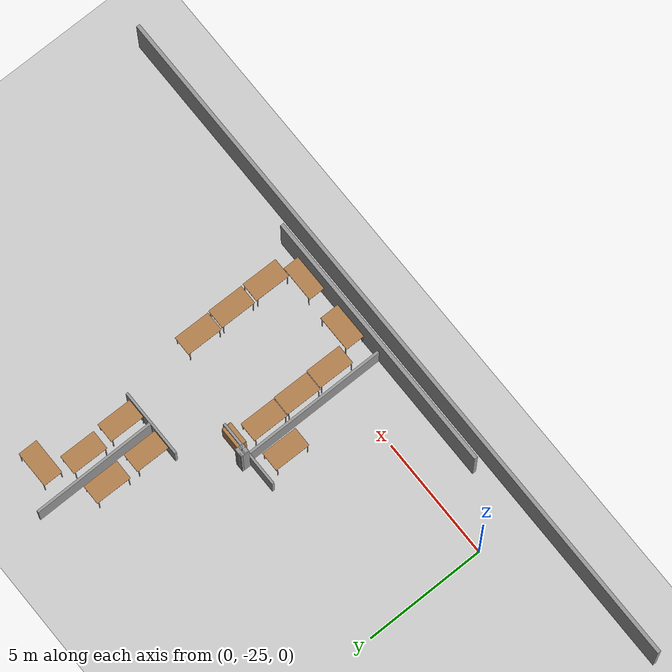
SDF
<sdf version="1.7">
 <world name="default">
  <model name="ground_plane">
   <static>1</static>
   <link name="link">
    <collision name="collision">
     <geometry><plane><normal>0 0 1</normal><size>100 100</size></plane></geometry>
     <surface>
      <contact><collide_bitmask>65535</collide_bitmask></contact>
      <friction><ode><mu>100</mu><mu2>50</mu2></ode></friction>
     </surface>
    </collision>
    <visual name="visual">
     <cast_shadows>0</cast_shadows>
     <geometry><plane><normal>0 0 1</normal><size>100 100</size></plane></geometry>
     <material>
      <script><uri>file://media/materials/scripts/gazebo.material</uri><name>Gazebo/Grey</name></script>
     </material>
    </visual>
   </link>
  </model>
  <model name="XXXXX_office_centered">
   <pose>8.46852 -9.33941 0 0 -0 0</pose>
   <link name="Wall_15">
    <collision name="Wall_15_Collision">
     <geometry><box><size>11 0.15 2.5</size></box></geometry>
     <pose>0 0 1.25 0 -0 0</pose>
    </collision>
    <visual name="Wall_15_Visual">
     <pose>0 0 1.25 0 -0 0</pose>
     <geometry><box><size>11 0.15 2.5</size></box></geometry>
     <material>
      <script><uri>file://media/materials/scripts/gazebo.material</uri><name>Gazebo/Grey</name></script>
      <ambient>1 1 1 1</ambient>
     </material>
     <meta><layer>0</layer></meta>
    </visual>
    <pose>-0.6 -17.3501 0 0 -0 3.14159</pose>
   </link>
   <link name="Wall_150">
    <collision name="Wall_150_Collision">
     <geometry><box><size>5.2 0.1 1.3</size></box></geometry>
     <pose>0 0 0.65 0 -0 0</pose>
    </collision>
    <visual name="Wall_150_Visual">
     <pose>0 0 0.65 0 -0 0</pose>
     <geometry><box><size>5.2 0.1 1.3</size></box></geometry>
     <material>
      <script><uri>file://media/materials/scripts/gazebo.material</uri><name>Gazebo/Grey</name></script>
      <ambient>1 1 1 1</ambient>
     </material>
     <meta><layer>0</layer></meta>
    </visual>
    <pose>2.35877 -6.75985 0 0 -0 -1.56746</pose>
   </link>
   <link name="Wall_151">
    <collision name="Wall_151_Collision">
     <geometry><box><size>1.45032 0.1 1.3</size></box></geometry>
     <pose>0 0 0.65 0 -0 0</pose>
    </collision>
    <visual name="Wall_151_Visual">
     <pose>0 0 0.65 0 -0 0</pose>
     <geometry><box><size>1.45032 0.1 1.3</size></box></geometry>
     <material>
      <script><uri>file://media/materials/scripts/gazebo.material</uri><name>Gazebo/Grey</name></script>
      <ambient>1 1 1 1</ambient>
     </material>
     <meta><layer>0</layer></meta>
    </visual>
    <pose>3.04227 -9.30985 0 0 -0 0</pose>
   </link>
   <link name="Wall_155">
    <collision name="Wall_155_Collision">
     <geometry><box><size>1.467 0.1 1.3</size></box></geometry>
     <pose>0 0 0.65 0 -0 0</pose>
    </collision>
    <visual name="Wall_155_Visual">
     <pose>0 0 0.65 0 -0 0</pose>
     <geometry><box><size>1.467 0.1 1.3</size></box></geometry>
     <material>
      <script><uri>file://media/materials/scripts/gazebo.material</uri><name>Gazebo/Grey</name></script>
      <ambient>1 1 1 1</ambient>
     </material>
     <meta><layer>0</layer></meta>
    </visual>
    <pose>1.68377 -9.30985 0 0 -0 3.14159</pose>
   </link>
   <link name="Wall_178">
    <collision name="Wall_178_Collision">
     <geometry><box><size>6.11833 0.1 1.3</size></box></geometry>
     <pose>0 0 0.65 0 -0 0</pose>
    </collision>
    <visual name="Wall_178_Visual">
     <pose>0 0 0.65 0 -0 0</pose>
     <geometry><box><size>6.11833 0.1 1.3</size></box></geometry>
     <material>
      <script><uri>file://media/materials/scripts/gazebo.material</uri><name>Gazebo/Grey</name></script>
      <ambient>1 1 1 1</ambient>
     </material>
     <meta><layer>0</layer></meta>
    </visual>
    <pose>-0.698728 -14.3349 0 0 -0 1.5708</pose>
   </link>
   <link name="Wall_179">
    <collision name="Wall_179_Collision">
     <geometry><box><size>1.44999 0.1 1.3</size></box></geometry>
     <pose>0 0 0.65 0 -0 0</pose>
    </collision>
    <visual name="Wall_179_Visual">
     <pose>0 0 0.65 0 -0 0</pose>
     <geometry><box><size>1.44999 0.1 1.3</size></box></geometry>
     <material>
      <script><uri>file://media/materials/scripts/gazebo.material</uri><name>Gazebo/Grey</name></script>
      <ambient>1 1 1 1</ambient>
     </material>
     <meta><layer>0</layer></meta>
    </visual>
    <pose>-0.023727 -11.3259 0 0 -0 0</pose>
   </link>
   <link name="Wall_181">
    <collision name="Wall_181_Collision">
     <geometry><box><size>1.45001 0.1 1.3</size></box></geometry>
     <pose>0 0 0.65 0 -0 0</pose>
    </collision>
    <visual name="Wall_181_Visual">
     <pose>0 0 0.65 0 -0 0</pose>
     <geometry><box><size>1.45001 0.1 1.3</size></box></geometry>
     <material>
      <script><uri>file://media/materials/scripts/gazebo.material</uri><name>Gazebo/Grey</name></script>
      <ambient>1 1 1 1</ambient>
     </material>
     <meta><layer>0</layer></meta>
    </visual>
    <pose>-1.37373 -11.3259 0 0 -0 3.14159</pose>
   </link>
   <link name="Wall_22">
    <collision name="Wall_22_Collision">
     <geometry><box><size>29.5 0.15 2.5</size></box></geometry>
     <pose>0 0 1.25 0 -0 0</pose>
    </collision>
    <visual name="Wall_22_Visual">
     <pose>0 0 1.25 0 -0 0</pose>
     <geometry><box><size>29.5 0.15 2.5</size></box></geometry>
     <material>
      <script><uri>file://media/materials/scripts/gazebo.material</uri><name>Gazebo/Grey</name></script>
      <ambient>1 1 1 1</ambient>
     </material>
     <meta><layer>0</layer></meta>
    </visual>
    <pose>-0.75 -17.9501 0 0 -0 3.14159</pose>
   </link>
   <link name="Wall_82">
    <collision name="Wall_82_Collision">
     <geometry><box><size>0.355014 0.15 2.5</size></box></geometry>
     <pose>0 0 1.25 0 -0 0</pose>
    </collision>
    <visual name="Wall_82_Visual">
     <pose>0 0 1.25 0 -0 0</pose>
     <geometry><box><size>0.355014 0.15 2.5</size></box></geometry>
     <material>
      <script><uri>file://media/materials/scripts/gazebo.material</uri><name>Gazebo/Grey</name></script>
      <ambient>1 1 1 1</ambient>
     </material>
     <meta><layer>0</layer></meta>
    </visual>
    <pose>-0.782969 -11.0784 0 0 -0 1.55467</pose>
   </link>
   <link name="Wall_83">
    <collision name="Wall_83_Collision">
     <geometry><box><size>0.35832 0.15 2.5</size></box></geometry>
     <pose>0 0 1.25 0 -0 0</pose>
    </collision>
    <visual name="Wall_83_Visual">
     <pose>0 0 1.25 0 -0 0</pose>
     <geometry><box><size>0.35832 0.15 2.5</size></box></geometry>
     <material>
      <script><uri>file://media/materials/scripts/gazebo.material</uri><name>Gazebo/Grey</name></script>
      <ambient>1 1 1 1</ambient>
     </material>
     <meta><layer>0</layer></meta>
    </visual>
    <pose>-0.677169 -10.9743 0 0 -0 0.015872</pose>
   </link>
   <link name="Wall_84">
    <collision name="Wall_84_Collision">
     <geometry><box><size>0.354987 0.15 2.5</size></box></geometry>
     <pose>0 0 1.25 0 -0 0</pose>
    </collision>
    <visual name="Wall_84_Visual">
     <pose>0 0 1.25 0 -0 0</pose>
     <geometry><box><size>0.354987 0.15 2.5</size></box></geometry>
     <material>
      <script><uri>file://media/materials/scripts/gazebo.material</uri><name>Gazebo/Grey</name></script>
      <ambient>1 1 1 1</ambient>
     </material>
     <meta><layer>0</layer></meta>
    </visual>
    <pose>-0.573022 -11.0751 0 0 -0 -1.5708</pose>
   </link>
   <link name="Wall_85">
    <collision name="Wall_85_Collision">
     <geometry><box><size>0.32866 0.15 2.5</size></box></geometry>
     <pose>0 0 1.25 0 -0 0</pose>
    </collision>
    <visual name="Wall_85_Visual">
     <pose>0 0 1.25 0 -0 0</pose>
     <geometry><box><size>0.32866 0.15 2.5</size></box></geometry>
     <material>
      <script><uri>file://media/materials/scripts/gazebo.material</uri><name>Gazebo/Grey</name></script>
      <ambient>1 1 1 1</ambient>
     </material>
     <meta><layer>0</layer></meta>
    </visual>
    <pose>-0.662291 -11.1743 0 0 -0 3.10457</pose>
   </link>
   <static>1</static>
  </model>
  <model name="table_8">
   <static>1</static>
   <link name="link">
    <collision name="surface">
     <pose>0 0 1 0 -0 0</pose>
     <geometry><box><size>1.5 0.8 0.03</size></box></geometry>
     <surface><friction><ode><mu>0.6</mu><mu2>0.6</mu2></ode></friction></surface>
    </collision>
    <visual name="visual1">
     <pose>0 0 1 0 -0 0</pose>
     <geometry><box><size>1.5 0.8 0.03</size></box></geometry>
     <material>
      <script><uri>file://media/materials/scripts/gazebo.material</uri><name>Gazebo/Wood</name></script>
     </material>
    </visual>
    <collision name="collision_front_left_leg">
     <pose>0.68 0.38 0.5 0 -0 0</pose>
     <geometry><cylinder><radius>0.02</radius><length>1</length></cylinder></geometry>
    </collision>
    <visual name="visual_front_left_leg">
     <pose>0.68 0.38 0.5 0 -0 0</pose>
     <geometry><cylinder><radius>0.02</radius><length>1</length></cylinder></geometry>
     <material>
      <script><uri>file://media/materials/scripts/gazebo.material</uri><name>Gazebo/Grey</name></script>
     </material>
    </visual>
    <collision name="collision_front_right_leg">
     <pose>0.68 -0.38 0.5 0 -0 0</pose>
     <geometry><cylinder><radius>0.02</radius><length>1</length></cylinder></geometry>
    </collision>
    <visual name="visual_front_right_leg">
     <pose>0.68 -0.38 0.5 0 -0 0</pose>
     <geometry><cylinder><radius>0.02</radius><length>1</length></cylinder></geometry>
     <material>
      <script><uri>file://media/materials/scripts/gazebo.material</uri><name>Gazebo/Grey</name></script>
     </material>
    </visual>
    <collision name="collision_back_right_leg">
     <pose>-0.68 -0.38 0.5 0 -0 0</pose>
     <geometry><cylinder><radius>0.02</radius><length>1</length></cylinder></geometry>
    </collision>
    <visual name="visual_back_right_leg">
     <pose>-0.68 -0.38 0.5 0 -0 0</pose>
     <geometry><cylinder><radius>0.02</radius><length>1</length></cylinder></geometry>
     <material>
      <script><uri>file://media/materials/scripts/gazebo.material</uri><name>Gazebo/Grey</name></script>
     </material>
    </visual>
    <collision name="collision_back_left_leg">
     <pose>-0.68 0.38 0.5 0 -0 0</pose>
     <geometry><cylinder><radius>0.02</radius><length>1</length></cylinder></geometry>
    </collision>
    <visual name="visual_back_left_leg">
     <pose>-0.68 0.38 0.5 0 -0 0</pose>
     <geometry><cylinder><radius>0.02</radius><length>1</length></cylinder></geometry>
     <material>
      <script><uri>file://media/materials/scripts/gazebo.material</uri><name>Gazebo/Grey</name></script>
     </material>
    </visual>
   </link>
   <pose>12.2109 -14.6879 0 0 -0 0</pose>
  </model>
  <model name="table_14">
   <static>1</static>
   <link name="link">
    <collision name="surface">
     <pose>0 0 1 0 -0 0</pose>
     <geometry><box><size>1.5 0.8 0.03</size></box></geometry>
     <surface><friction><ode><mu>0.6</mu><mu2>0.6</mu2></ode></friction></surface>
    </collision>
    <visual name="visual1">
     <pose>0 0 1 0 -0 0</pose>
     <geometry><box><size>1.5 0.8 0.03</size></box></geometry>
     <material>
      <script><uri>file://media/materials/scripts/gazebo.material</uri><name>Gazebo/Wood</name></script>
     </material>
    </visual>
    <collision name="collision_front_left_leg">
     <pose>0.68 0.38 0.5 0 -0 0</pose>
     <geometry><cylinder><radius>0.02</radius><length>1</length></cylinder></geometry>
    </collision>
    <visual name="visual_front_left_leg">
     <pose>0.68 0.38 0.5 0 -0 0</pose>
     <geometry><cylinder><radius>0.02</radius><length>1</length></cylinder></geometry>
     <material>
      <script><uri>file://media/materials/scripts/gazebo.material</uri><name>Gazebo/Grey</name></script>
     </material>
    </visual>
    <collision name="collision_front_right_leg">
     <pose>0.68 -0.38 0.5 0 -0 0</pose>
     <geometry><cylinder><radius>0.02</radius><length>1</length></cylinder></geometry>
    </collision>
    <visual name="visual_front_right_leg">
     <pose>0.68 -0.38 0.5 0 -0 0</pose>
     <geometry><cylinder><radius>0.02</radius><length>1</length></cylinder></geometry>
     <material>
      <script><uri>file://media/materials/scripts/gazebo.material</uri><name>Gazebo/Grey</name></script>
     </material>
    </visual>
    <collision name="collision_back_right_leg">
     <pose>-0.68 -0.38 0.5 0 -0 0</pose>
     <geometry><cylinder><radius>0.02</radius><length>1</length></cylinder></geometry>
    </collision>
    <visual name="visual_back_right_leg">
     <pose>-0.68 -0.38 0.5 0 -0 0</pose>
     <geometry><cylinder><radius>0.02</radius><length>1</length></cylinder></geometry>
     <material>
      <script><uri>file://media/materials/scripts/gazebo.material</uri><name>Gazebo/Grey</name></script>
     </material>
    </visual>
    <collision name="collision_back_left_leg">
     <pose>-0.68 0.38 0.5 0 -0 0</pose>
     <geometry><cylinder><radius>0.02</radius><length>1</length></cylinder></geometry>
    </collision>
    <visual name="visual_back_left_leg">
     <pose>-0.68 0.38 0.5 0 -0 0</pose>
     <geometry><cylinder><radius>0.02</radius><length>1</length></cylinder></geometry>
     <material>
      <script><uri>file://media/materials/scripts/gazebo.material</uri><name>Gazebo/Grey</name></script>
     </material>
    </visual>
   </link>
   <pose>9.3402 -26.2238 0 0 -0 0</pose>
  </model>
  <model name="table_15">
   <static>1</static>
   <link name="link">
    <collision name="surface">
     <pose>0 0 1 0 -0 0</pose>
     <geometry><box><size>1.5 0.8 0.03</size></box></geometry>
     <surface><friction><ode><mu>0.6</mu><mu2>0.6</mu2></ode></friction></surface>
    </collision>
    <visual name="visual1">
     <pose>0 0 1 0 -0 0</pose>
     <geometry><box><size>1.5 0.8 0.03</size></box></geometry>
     <material>
      <script><uri>file://media/materials/scripts/gazebo.material</uri><name>Gazebo/Wood</name></script>
     </material>
    </visual>
    <collision name="collision_front_left_leg">
     <pose>0.68 0.38 0.5 0 -0 0</pose>
     <geometry><cylinder><radius>0.02</radius><length>1</length></cylinder></geometry>
    </collision>
    <visual name="visual_front_left_leg">
     <pose>0.68 0.38 0.5 0 -0 0</pose>
     <geometry><cylinder><radius>0.02</radius><length>1</length></cylinder></geometry>
     <material>
      <script><uri>file://media/materials/scripts/gazebo.material</uri><name>Gazebo/Grey</name></script>
     </material>
    </visual>
    <collision name="collision_front_right_leg">
     <pose>0.68 -0.38 0.5 0 -0 0</pose>
     <geometry><cylinder><radius>0.02</radius><length>1</length></cylinder></geometry>
    </collision>
    <visual name="visual_front_right_leg">
     <pose>0.68 -0.38 0.5 0 -0 0</pose>
     <geometry><cylinder><radius>0.02</radius><length>1</length></cylinder></geometry>
     <material>
      <script><uri>file://media/materials/scripts/gazebo.material</uri><name>Gazebo/Grey</name></script>
     </material>
    </visual>
    <collision name="collision_back_right_leg">
     <pose>-0.68 -0.38 0.5 0 -0 0</pose>
     <geometry><cylinder><radius>0.02</radius><length>1</length></cylinder></geometry>
    </collision>
    <visual name="visual_back_right_leg">
     <pose>-0.68 -0.38 0.5 0 -0 0</pose>
     <geometry><cylinder><radius>0.02</radius><length>1</length></cylinder></geometry>
     <material>
      <script><uri>file://media/materials/scripts/gazebo.material</uri><name>Gazebo/Grey</name></script>
     </material>
    </visual>
    <collision name="collision_back_left_leg">
     <pose>-0.68 0.38 0.5 0 -0 0</pose>
     <geometry><cylinder><radius>0.02</radius><length>1</length></cylinder></geometry>
    </collision>
    <visual name="visual_back_left_leg">
     <pose>-0.68 0.38 0.5 0 -0 0</pose>
     <geometry><cylinder><radius>0.02</radius><length>1</length></cylinder></geometry>
     <material>
      <script><uri>file://media/materials/scripts/gazebo.material</uri><name>Gazebo/Grey</name></script>
     </material>
    </visual>
   </link>
   <pose>11.6172 -26.3433 0 0 -0 0</pose>
  </model>
  <model name="table_26_clone_12">
   <static>1</static>
   <link name="link">
    <collision name="surface">
     <pose>0 0 1 0 -0 0</pose>
     <geometry><box><size>1.5 0.8 0.03</size></box></geometry>
     <surface><friction><ode><mu>0.6</mu><mu2>0.6</mu2></ode></friction></surface>
    </collision>
    <visual name="visual1">
     <pose>0 0 1 0 -0 0</pose>
     <geometry><box><size>1.5 0.8 0.03</size></box></geometry>
     <material>
      <script><uri>file://media/materials/scripts/gazebo.material</uri><name>Gazebo/Wood</name></script>
     </material>
    </visual>
    <collision name="collision_front_left_leg">
     <pose>0.68 0.38 0.5 0 -0 0</pose>
     <geometry><cylinder><radius>0.02</radius><length>1</length></cylinder></geometry>
    </collision>
    <visual name="visual_front_left_leg">
     <pose>0.68 0.38 0.5 0 -0 0</pose>
     <geometry><cylinder><radius>0.02</radius><length>1</length></cylinder></geometry>
     <material>
      <script><uri>file://media/materials/scripts/gazebo.material</uri><name>Gazebo/Grey</name></script>
     </material>
    </visual>
    <collision name="collision_front_right_leg">
     <pose>0.68 -0.38 0.5 0 -0 0</pose>
     <geometry><cylinder><radius>0.02</radius><length>1</length></cylinder></geometry>
    </collision>
    <visual name="visual_front_right_leg">
     <pose>0.68 -0.38 0.5 0 -0 0</pose>
     <geometry><cylinder><radius>0.02</radius><length>1</length></cylinder></geometry>
     <material>
      <script><uri>file://media/materials/scripts/gazebo.material</uri><name>Gazebo/Grey</name></script>
     </material>
    </visual>
    <collision name="collision_back_right_leg">
     <pose>-0.68 -0.38 0.5 0 -0 0</pose>
     <geometry><cylinder><radius>0.02</radius><length>1</length></cylinder></geometry>
    </collision>
    <visual name="visual_back_right_leg">
     <pose>-0.68 -0.38 0.5 0 -0 0</pose>
     <geometry><cylinder><radius>0.02</radius><length>1</length></cylinder></geometry>
     <material>
      <script><uri>file://media/materials/scripts/gazebo.material</uri><name>Gazebo/Grey</name></script>
     </material>
    </visual>
    <collision name="collision_back_left_leg">
     <pose>-0.68 0.38 0.5 0 -0 0</pose>
     <geometry><cylinder><radius>0.02</radius><length>1</length></cylinder></geometry>
    </collision>
    <visual name="visual_back_left_leg">
     <pose>-0.68 0.38 0.5 0 -0 0</pose>
     <geometry><cylinder><radius>0.02</radius><length>1</length></cylinder></geometry>
     <material>
      <script><uri>file://media/materials/scripts/gazebo.material</uri><name>Gazebo/Grey</name></script>
     </material>
    </visual>
   </link>
   <pose>11.6314 -17.8937 0 0 0 -1.57974</pose>
  </model>
  <model name="table_26_clone_13">
   <static>1</static>
   <link name="link">
    <collision name="surface">
     <pose>0 0 1 0 -0 0</pose>
     <geometry><box><size>1.5 0.8 0.03</size></box></geometry>
     <surface><friction><ode><mu>0.6</mu><mu2>0.6</mu2></ode></friction></surface>
    </collision>
    <visual name="visual1">
     <pose>0 0 1 0 -0 0</pose>
     <geometry><box><size>1.5 0.8 0.03</size></box></geometry>
     <material>
      <script><uri>file://media/materials/scripts/gazebo.material</uri><name>Gazebo/Wood</name></script>
     </material>
    </visual>
    <collision name="collision_front_left_leg">
     <pose>0.68 0.38 0.5 0 -0 0</pose>
     <geometry><cylinder><radius>0.02</radius><length>1</length></cylinder></geometry>
    </collision>
    <visual name="visual_front_left_leg">
     <pose>0.68 0.38 0.5 0 -0 0</pose>
     <geometry><cylinder><radius>0.02</radius><length>1</length></cylinder></geometry>
     <material>
      <script><uri>file://media/materials/scripts/gazebo.material</uri><name>Gazebo/Grey</name></script>
     </material>
    </visual>
    <collision name="collision_front_right_leg">
     <pose>0.68 -0.38 0.5 0 -0 0</pose>
     <geometry><cylinder><radius>0.02</radius><length>1</length></cylinder></geometry>
    </collision>
    <visual name="visual_front_right_leg">
     <pose>0.68 -0.38 0.5 0 -0 0</pose>
     <geometry><cylinder><radius>0.02</radius><length>1</length></cylinder></geometry>
     <material>
      <script><uri>file://media/materials/scripts/gazebo.material</uri><name>Gazebo/Grey</name></script>
     </material>
    </visual>
    <collision name="collision_back_right_leg">
     <pose>-0.68 -0.38 0.5 0 -0 0</pose>
     <geometry><cylinder><radius>0.02</radius><length>1</length></cylinder></geometry>
    </collision>
    <visual name="visual_back_right_leg">
     <pose>-0.68 -0.38 0.5 0 -0 0</pose>
     <geometry><cylinder><radius>0.02</radius><length>1</length></cylinder></geometry>
     <material>
      <script><uri>file://media/materials/scripts/gazebo.material</uri><name>Gazebo/Grey</name></script>
     </material>
    </visual>
    <collision name="collision_back_left_leg">
     <pose>-0.68 0.38 0.5 0 -0 0</pose>
     <geometry><cylinder><radius>0.02</radius><length>1</length></cylinder></geometry>
    </collision>
    <visual name="visual_back_left_leg">
     <pose>-0.68 0.38 0.5 0 -0 0</pose>
     <geometry><cylinder><radius>0.02</radius><length>1</length></cylinder></geometry>
     <material>
      <script><uri>file://media/materials/scripts/gazebo.material</uri><name>Gazebo/Grey</name></script>
     </material>
    </visual>
   </link>
   <pose>11.5459 -16.1358 0 0 0 -1.57974</pose>
  </model>
  <model name="table_26_clone_14">
   <static>1</static>
   <link name="link">
    <collision name="surface">
     <pose>0 0 1 0 -0 0</pose>
     <geometry><box><size>1.5 0.8 0.03</size></box></geometry>
     <surface><friction><ode><mu>0.6</mu><mu2>0.6</mu2></ode></friction></surface>
    </collision>
    <visual name="visual1">
     <pose>0 0 1 0 -0 0</pose>
     <geometry><box><size>1.5 0.8 0.03</size></box></geometry>
     <material>
      <script><uri>file://media/materials/scripts/gazebo.material</uri><name>Gazebo/Wood</name></script>
     </material>
    </visual>
    <collision name="collision_front_left_leg">
     <pose>0.68 0.38 0.5 0 -0 0</pose>
     <geometry><cylinder><radius>0.02</radius><length>1</length></cylinder></geometry>
    </collision>
    <visual name="visual_front_left_leg">
     <pose>0.68 0.38 0.5 0 -0 0</pose>
     <geometry><cylinder><radius>0.02</radius><length>1</length></cylinder></geometry>
     <material>
      <script><uri>file://media/materials/scripts/gazebo.material</uri><name>Gazebo/Grey</name></script>
     </material>
    </visual>
    <collision name="collision_front_right_leg">
     <pose>0.68 -0.38 0.5 0 -0 0</pose>
     <geometry><cylinder><radius>0.02</radius><length>1</length></cylinder></geometry>
    </collision>
    <visual name="visual_front_right_leg">
     <pose>0.68 -0.38 0.5 0 -0 0</pose>
     <geometry><cylinder><radius>0.02</radius><length>1</length></cylinder></geometry>
     <material>
      <script><uri>file://media/materials/scripts/gazebo.material</uri><name>Gazebo/Grey</name></script>
     </material>
    </visual>
    <collision name="collision_back_right_leg">
     <pose>-0.68 -0.38 0.5 0 -0 0</pose>
     <geometry><cylinder><radius>0.02</radius><length>1</length></cylinder></geometry>
    </collision>
    <visual name="visual_back_right_leg">
     <pose>-0.68 -0.38 0.5 0 -0 0</pose>
     <geometry><cylinder><radius>0.02</radius><length>1</length></cylinder></geometry>
     <material>
      <script><uri>file://media/materials/scripts/gazebo.material</uri><name>Gazebo/Grey</name></script>
     </material>
    </visual>
    <collision name="collision_back_left_leg">
     <pose>-0.68 0.38 0.5 0 -0 0</pose>
     <geometry><cylinder><radius>0.02</radius><length>1</length></cylinder></geometry>
    </collision>
    <visual name="visual_back_left_leg">
     <pose>-0.68 0.38 0.5 0 -0 0</pose>
     <geometry><cylinder><radius>0.02</radius><length>1</length></cylinder></geometry>
     <material>
      <script><uri>file://media/materials/scripts/gazebo.material</uri><name>Gazebo/Grey</name></script>
     </material>
    </visual>
   </link>
   <pose>10.1779 -17.9415 0 0 0 -1.57974</pose>
  </model>
  <model name="table_26_clone_15">
   <static>1</static>
   <link name="link">
    <collision name="surface">
     <pose>0 0 1 0 -0 0</pose>
     <geometry><box><size>1.5 0.8 0.03</size></box></geometry>
     <surface><friction><ode><mu>0.6</mu><mu2>0.6</mu2></ode></friction></surface>
    </collision>
    <visual name="visual1">
     <pose>0 0 1 0 -0 0</pose>
     <geometry><box><size>1.5 0.8 0.03</size></box></geometry>
     <material>
      <script><uri>file://media/materials/scripts/gazebo.material</uri><name>Gazebo/Wood</name></script>
     </material>
    </visual>
    <collision name="collision_front_left_leg">
     <pose>0.68 0.38 0.5 0 -0 0</pose>
     <geometry><cylinder><radius>0.02</radius><length>1</length></cylinder></geometry>
    </collision>
    <visual name="visual_front_left_leg">
     <pose>0.68 0.38 0.5 0 -0 0</pose>
     <geometry><cylinder><radius>0.02</radius><length>1</length></cylinder></geometry>
     <material>
      <script><uri>file://media/materials/scripts/gazebo.material</uri><name>Gazebo/Grey</name></script>
     </material>
    </visual>
    <collision name="collision_front_right_leg">
     <pose>0.68 -0.38 0.5 0 -0 0</pose>
     <geometry><cylinder><radius>0.02</radius><length>1</length></cylinder></geometry>
    </collision>
    <visual name="visual_front_right_leg">
     <pose>0.68 -0.38 0.5 0 -0 0</pose>
     <geometry><cylinder><radius>0.02</radius><length>1</length></cylinder></geometry>
     <material>
      <script><uri>file://media/materials/scripts/gazebo.material</uri><name>Gazebo/Grey</name></script>
     </material>
    </visual>
    <collision name="collision_back_right_leg">
     <pose>-0.68 -0.38 0.5 0 -0 0</pose>
     <geometry><cylinder><radius>0.02</radius><length>1</length></cylinder></geometry>
    </collision>
    <visual name="visual_back_right_leg">
     <pose>-0.68 -0.38 0.5 0 -0 0</pose>
     <geometry><cylinder><radius>0.02</radius><length>1</length></cylinder></geometry>
     <material>
      <script><uri>file://media/materials/scripts/gazebo.material</uri><name>Gazebo/Grey</name></script>
     </material>
    </visual>
    <collision name="collision_back_left_leg">
     <pose>-0.68 0.38 0.5 0 -0 0</pose>
     <geometry><cylinder><radius>0.02</radius><length>1</length></cylinder></geometry>
    </collision>
    <visual name="visual_back_left_leg">
     <pose>-0.68 0.38 0.5 0 -0 0</pose>
     <geometry><cylinder><radius>0.02</radius><length>1</length></cylinder></geometry>
     <material>
      <script><uri>file://media/materials/scripts/gazebo.material</uri><name>Gazebo/Grey</name></script>
     </material>
    </visual>
   </link>
   <pose>10.166 -16.1139 0 0 0 -1.57974</pose>
  </model>
  <model name="table_26_clone_29">
   <static>1</static>
   <link name="link">
    <collision name="surface">
     <pose>0 0 1 0 -0 0</pose>
     <geometry><box><size>1.5 0.8 0.03</size></box></geometry>
     <surface><friction><ode><mu>0.6</mu><mu2>0.6</mu2></ode></friction></surface>
    </collision>
    <visual name="visual1">
     <pose>0 0 1 0 -0 0</pose>
     <geometry><box><size>1.5 0.8 0.03</size></box></geometry>
     <material>
      <script><uri>file://media/materials/scripts/gazebo.material</uri><name>Gazebo/Wood</name></script>
     </material>
    </visual>
    <collision name="collision_front_left_leg">
     <pose>0.68 0.38 0.5 0 -0 0</pose>
     <geometry><cylinder><radius>0.02</radius><length>1</length></cylinder></geometry>
    </collision>
    <visual name="visual_front_left_leg">
     <pose>0.68 0.38 0.5 0 -0 0</pose>
     <geometry><cylinder><radius>0.02</radius><length>1</length></cylinder></geometry>
     <material>
      <script><uri>file://media/materials/scripts/gazebo.material</uri><name>Gazebo/Grey</name></script>
     </material>
    </visual>
    <collision name="collision_front_right_leg">
     <pose>0.68 -0.38 0.5 0 -0 0</pose>
     <geometry><cylinder><radius>0.02</radius><length>1</length></cylinder></geometry>
    </collision>
    <visual name="visual_front_right_leg">
     <pose>0.68 -0.38 0.5 0 -0 0</pose>
     <geometry><cylinder><radius>0.02</radius><length>1</length></cylinder></geometry>
     <material>
      <script><uri>file://media/materials/scripts/gazebo.material</uri><name>Gazebo/Grey</name></script>
     </material>
    </visual>
    <collision name="collision_back_right_leg">
     <pose>-0.68 -0.38 0.5 0 -0 0</pose>
     <geometry><cylinder><radius>0.02</radius><length>1</length></cylinder></geometry>
    </collision>
    <visual name="visual_back_right_leg">
     <pose>-0.68 -0.38 0.5 0 -0 0</pose>
     <geometry><cylinder><radius>0.02</radius><length>1</length></cylinder></geometry>
     <material>
      <script><uri>file://media/materials/scripts/gazebo.material</uri><name>Gazebo/Grey</name></script>
     </material>
    </visual>
    <collision name="collision_back_left_leg">
     <pose>-0.68 0.38 0.5 0 -0 0</pose>
     <geometry><cylinder><radius>0.02</radius><length>1</length></cylinder></geometry>
    </collision>
    <visual name="visual_back_left_leg">
     <pose>-0.68 0.38 0.5 0 -0 0</pose>
     <geometry><cylinder><radius>0.02</radius><length>1</length></cylinder></geometry>
     <material>
      <script><uri>file://media/materials/scripts/gazebo.material</uri><name>Gazebo/Grey</name></script>
     </material>
    </visual>
   </link>
   <pose>7.10308 -21.8312 0 0 0 -1.57974</pose>
  </model>
  <model name="table_26_clone_32">
   <static>1</static>
   <link name="link">
    <collision name="surface">
     <pose>0 0 1 0 -0 0</pose>
     <geometry><box><size>1.5 0.8 0.03</size></box></geometry>
     <surface><friction><ode><mu>0.6</mu><mu2>0.6</mu2></ode></friction></surface>
    </collision>
    <visual name="visual1">
     <pose>0 0 1 0 -0 0</pose>
     <geometry><box><size>1.5 0.8 0.03</size></box></geometry>
     <material>
      <script><uri>file://media/materials/scripts/gazebo.material</uri><name>Gazebo/Wood</name></script>
     </material>
    </visual>
    <collision name="collision_front_left_leg">
     <pose>0.68 0.38 0.5 0 -0 0</pose>
     <geometry><cylinder><radius>0.02</radius><length>1</length></cylinder></geometry>
    </collision>
    <visual name="visual_front_left_leg">
     <pose>0.68 0.38 0.5 0 -0 0</pose>
     <geometry><cylinder><radius>0.02</radius><length>1</length></cylinder></geometry>
     <material>
      <script><uri>file://media/materials/scripts/gazebo.material</uri><name>Gazebo/Grey</name></script>
     </material>
    </visual>
    <collision name="collision_front_right_leg">
     <pose>0.68 -0.38 0.5 0 -0 0</pose>
     <geometry><cylinder><radius>0.02</radius><length>1</length></cylinder></geometry>
    </collision>
    <visual name="visual_front_right_leg">
     <pose>0.68 -0.38 0.5 0 -0 0</pose>
     <geometry><cylinder><radius>0.02</radius><length>1</length></cylinder></geometry>
     <material>
      <script><uri>file://media/materials/scripts/gazebo.material</uri><name>Gazebo/Grey</name></script>
     </material>
    </visual>
    <collision name="collision_back_right_leg">
     <pose>-0.68 -0.38 0.5 0 -0 0</pose>
     <geometry><cylinder><radius>0.02</radius><length>1</length></cylinder></geometry>
    </collision>
    <visual name="visual_back_right_leg">
     <pose>-0.68 -0.38 0.5 0 -0 0</pose>
     <geometry><cylinder><radius>0.02</radius><length>1</length></cylinder></geometry>
     <material>
      <script><uri>file://media/materials/scripts/gazebo.material</uri><name>Gazebo/Grey</name></script>
     </material>
    </visual>
    <collision name="collision_back_left_leg">
     <pose>-0.68 0.38 0.5 0 -0 0</pose>
     <geometry><cylinder><radius>0.02</radius><length>1</length></cylinder></geometry>
    </collision>
    <visual name="visual_back_left_leg">
     <pose>-0.68 0.38 0.5 0 -0 0</pose>
     <geometry><cylinder><radius>0.02</radius><length>1</length></cylinder></geometry>
     <material>
      <script><uri>file://media/materials/scripts/gazebo.material</uri><name>Gazebo/Grey</name></script>
     </material>
    </visual>
   </link>
   <pose>12.4004 -22.0335 0 0 0 -1.57974</pose>
  </model>
  <model name="table_26_clone_33">
   <static>1</static>
   <link name="link">
    <collision name="surface">
     <pose>0 0 1 0 -0 0</pose>
     <geometry><box><size>1.5 0.8 0.03</size></box></geometry>
     <surface><friction><ode><mu>0.6</mu><mu2>0.6</mu2></ode></friction></surface>
    </collision>
    <visual name="visual1">
     <pose>0 0 1 0 -0 0</pose>
     <geometry><box><size>1.5 0.8 0.03</size></box></geometry>
     <material>
      <script><uri>file://media/materials/scripts/gazebo.material</uri><name>Gazebo/Wood</name></script>
     </material>
    </visual>
    <collision name="collision_front_left_leg">
     <pose>0.68 0.38 0.5 0 -0 0</pose>
     <geometry><cylinder><radius>0.02</radius><length>1</length></cylinder></geometry>
    </collision>
    <visual name="visual_front_left_leg">
     <pose>0.68 0.38 0.5 0 -0 0</pose>
     <geometry><cylinder><radius>0.02</radius><length>1</length></cylinder></geometry>
     <material>
      <script><uri>file://media/materials/scripts/gazebo.material</uri><name>Gazebo/Grey</name></script>
     </material>
    </visual>
    <collision name="collision_front_right_leg">
     <pose>0.68 -0.38 0.5 0 -0 0</pose>
     <geometry><cylinder><radius>0.02</radius><length>1</length></cylinder></geometry>
    </collision>
    <visual name="visual_front_right_leg">
     <pose>0.68 -0.38 0.5 0 -0 0</pose>
     <geometry><cylinder><radius>0.02</radius><length>1</length></cylinder></geometry>
     <material>
      <script><uri>file://media/materials/scripts/gazebo.material</uri><name>Gazebo/Grey</name></script>
     </material>
    </visual>
    <collision name="collision_back_right_leg">
     <pose>-0.68 -0.38 0.5 0 -0 0</pose>
     <geometry><cylinder><radius>0.02</radius><length>1</length></cylinder></geometry>
    </collision>
    <visual name="visual_back_right_leg">
     <pose>-0.68 -0.38 0.5 0 -0 0</pose>
     <geometry><cylinder><radius>0.02</radius><length>1</length></cylinder></geometry>
     <material>
      <script><uri>file://media/materials/scripts/gazebo.material</uri><name>Gazebo/Grey</name></script>
     </material>
    </visual>
    <collision name="collision_back_left_leg">
     <pose>-0.68 0.38 0.5 0 -0 0</pose>
     <geometry><cylinder><radius>0.02</radius><length>1</length></cylinder></geometry>
    </collision>
    <visual name="visual_back_left_leg">
     <pose>-0.68 0.38 0.5 0 -0 0</pose>
     <geometry><cylinder><radius>0.02</radius><length>1</length></cylinder></geometry>
     <material>
      <script><uri>file://media/materials/scripts/gazebo.material</uri><name>Gazebo/Grey</name></script>
     </material>
    </visual>
   </link>
   <pose>12.4221 -23.5896 0 0 0 -1.57974</pose>
  </model>
  <model name="table_26_clone_34">
   <static>1</static>
   <link name="link">
    <collision name="surface">
     <pose>0 0 1 0 -0 0</pose>
     <geometry><box><size>1.5 0.8 0.03</size></box></geometry>
     <surface><friction><ode><mu>0.6</mu><mu2>0.6</mu2></ode></friction></surface>
    </collision>
    <visual name="visual1">
     <pose>0 0 1 0 -0 0</pose>
     <geometry><box><size>1.5 0.8 0.03</size></box></geometry>
     <material>
      <script><uri>file://media/materials/scripts/gazebo.material</uri><name>Gazebo/Wood</name></script>
     </material>
    </visual>
    <collision name="collision_front_left_leg">
     <pose>0.68 0.38 0.5 0 -0 0</pose>
     <geometry><cylinder><radius>0.02</radius><length>1</length></cylinder></geometry>
    </collision>
    <visual name="visual_front_left_leg">
     <pose>0.68 0.38 0.5 0 -0 0</pose>
     <geometry><cylinder><radius>0.02</radius><length>1</length></cylinder></geometry>
     <material>
      <script><uri>file://media/materials/scripts/gazebo.material</uri><name>Gazebo/Grey</name></script>
     </material>
    </visual>
    <collision name="collision_front_right_leg">
     <pose>0.68 -0.38 0.5 0 -0 0</pose>
     <geometry><cylinder><radius>0.02</radius><length>1</length></cylinder></geometry>
    </collision>
    <visual name="visual_front_right_leg">
     <pose>0.68 -0.38 0.5 0 -0 0</pose>
     <geometry><cylinder><radius>0.02</radius><length>1</length></cylinder></geometry>
     <material>
      <script><uri>file://media/materials/scripts/gazebo.material</uri><name>Gazebo/Grey</name></script>
     </material>
    </visual>
    <collision name="collision_back_right_leg">
     <pose>-0.68 -0.38 0.5 0 -0 0</pose>
     <geometry><cylinder><radius>0.02</radius><length>1</length></cylinder></geometry>
    </collision>
    <visual name="visual_back_right_leg">
     <pose>-0.68 -0.38 0.5 0 -0 0</pose>
     <geometry><cylinder><radius>0.02</radius><length>1</length></cylinder></geometry>
     <material>
      <script><uri>file://media/materials/scripts/gazebo.material</uri><name>Gazebo/Grey</name></script>
     </material>
    </visual>
    <collision name="collision_back_left_leg">
     <pose>-0.68 0.38 0.5 0 -0 0</pose>
     <geometry><cylinder><radius>0.02</radius><length>1</length></cylinder></geometry>
    </collision>
    <visual name="visual_back_left_leg">
     <pose>-0.68 0.38 0.5 0 -0 0</pose>
     <geometry><cylinder><radius>0.02</radius><length>1</length></cylinder></geometry>
     <material>
      <script><uri>file://media/materials/scripts/gazebo.material</uri><name>Gazebo/Grey</name></script>
     </material>
    </visual>
   </link>
   <pose>8.438 -21.898 0 0 0 -1.57974</pose>
  </model>
  <model name="table_26_clone_35">
   <static>1</static>
   <link name="link">
    <collision name="surface">
     <pose>0 0 1 0 -0 0</pose>
     <geometry><box><size>1.5 0.8 0.03</size></box></geometry>
     <surface><friction><ode><mu>0.6</mu><mu2>0.6</mu2></ode></friction></surface>
    </collision>
    <visual name="visual1">
     <pose>0 0 1 0 -0 0</pose>
     <geometry><box><size>1.5 0.8 0.03</size></box></geometry>
     <material>
      <script><uri>file://media/materials/scripts/gazebo.material</uri><name>Gazebo/Wood</name></script>
     </material>
    </visual>
    <collision name="collision_front_left_leg">
     <pose>0.68 0.38 0.5 0 -0 0</pose>
     <geometry><cylinder><radius>0.02</radius><length>1</length></cylinder></geometry>
    </collision>
    <visual name="visual_front_left_leg">
     <pose>0.68 0.38 0.5 0 -0 0</pose>
     <geometry><cylinder><radius>0.02</radius><length>1</length></cylinder></geometry>
     <material>
      <script><uri>file://media/materials/scripts/gazebo.material</uri><name>Gazebo/Grey</name></script>
     </material>
    </visual>
    <collision name="collision_front_right_leg">
     <pose>0.68 -0.38 0.5 0 -0 0</pose>
     <geometry><cylinder><radius>0.02</radius><length>1</length></cylinder></geometry>
    </collision>
    <visual name="visual_front_right_leg">
     <pose>0.68 -0.38 0.5 0 -0 0</pose>
     <geometry><cylinder><radius>0.02</radius><length>1</length></cylinder></geometry>
     <material>
      <script><uri>file://media/materials/scripts/gazebo.material</uri><name>Gazebo/Grey</name></script>
     </material>
    </visual>
    <collision name="collision_back_right_leg">
     <pose>-0.68 -0.38 0.5 0 -0 0</pose>
     <geometry><cylinder><radius>0.02</radius><length>1</length></cylinder></geometry>
    </collision>
    <visual name="visual_back_right_leg">
     <pose>-0.68 -0.38 0.5 0 -0 0</pose>
     <geometry><cylinder><radius>0.02</radius><length>1</length></cylinder></geometry>
     <material>
      <script><uri>file://media/materials/scripts/gazebo.material</uri><name>Gazebo/Grey</name></script>
     </material>
    </visual>
    <collision name="collision_back_left_leg">
     <pose>-0.68 0.38 0.5 0 -0 0</pose>
     <geometry><cylinder><radius>0.02</radius><length>1</length></cylinder></geometry>
    </collision>
    <visual name="visual_back_left_leg">
     <pose>-0.68 0.38 0.5 0 -0 0</pose>
     <geometry><cylinder><radius>0.02</radius><length>1</length></cylinder></geometry>
     <material>
      <script><uri>file://media/materials/scripts/gazebo.material</uri><name>Gazebo/Grey</name></script>
     </material>
    </visual>
   </link>
   <pose>8.45102 -23.4235 0 0 0 -1.57974</pose>
  </model>
  <model name="table_26_clone_36">
   <static>1</static>
   <link name="link">
    <collision name="surface">
     <pose>0 0 1 0 -0 0</pose>
     <geometry><box><size>1.5 0.8 0.03</size></box></geometry>
     <surface><friction><ode><mu>0.6</mu><mu2>0.6</mu2></ode></friction></surface>
    </collision>
    <visual name="visual1">
     <pose>0 0 1 0 -0 0</pose>
     <geometry><box><size>1.5 0.8 0.03</size></box></geometry>
     <material>
      <script><uri>file://media/materials/scripts/gazebo.material</uri><name>Gazebo/Wood</name></script>
     </material>
    </visual>
    <collision name="collision_front_left_leg">
     <pose>0.68 0.38 0.5 0 -0 0</pose>
     <geometry><cylinder><radius>0.02</radius><length>1</length></cylinder></geometry>
    </collision>
    <visual name="visual_front_left_leg">
     <pose>0.68 0.38 0.5 0 -0 0</pose>
     <geometry><cylinder><radius>0.02</radius><length>1</length></cylinder></geometry>
     <material>
      <script><uri>file://media/materials/scripts/gazebo.material</uri><name>Gazebo/Grey</name></script>
     </material>
    </visual>
    <collision name="collision_front_right_leg">
     <pose>0.68 -0.38 0.5 0 -0 0</pose>
     <geometry><cylinder><radius>0.02</radius><length>1</length></cylinder></geometry>
    </collision>
    <visual name="visual_front_right_leg">
     <pose>0.68 -0.38 0.5 0 -0 0</pose>
     <geometry><cylinder><radius>0.02</radius><length>1</length></cylinder></geometry>
     <material>
      <script><uri>file://media/materials/scripts/gazebo.material</uri><name>Gazebo/Grey</name></script>
     </material>
    </visual>
    <collision name="collision_back_right_leg">
     <pose>-0.68 -0.38 0.5 0 -0 0</pose>
     <geometry><cylinder><radius>0.02</radius><length>1</length></cylinder></geometry>
    </collision>
    <visual name="visual_back_right_leg">
     <pose>-0.68 -0.38 0.5 0 -0 0</pose>
     <geometry><cylinder><radius>0.02</radius><length>1</length></cylinder></geometry>
     <material>
      <script><uri>file://media/materials/scripts/gazebo.material</uri><name>Gazebo/Grey</name></script>
     </material>
    </visual>
    <collision name="collision_back_left_leg">
     <pose>-0.68 0.38 0.5 0 -0 0</pose>
     <geometry><cylinder><radius>0.02</radius><length>1</length></cylinder></geometry>
    </collision>
    <visual name="visual_back_left_leg">
     <pose>-0.68 0.38 0.5 0 -0 0</pose>
     <geometry><cylinder><radius>0.02</radius><length>1</length></cylinder></geometry>
     <material>
      <script><uri>file://media/materials/scripts/gazebo.material</uri><name>Gazebo/Grey</name></script>
     </material>
    </visual>
   </link>
   <pose>8.47763 -24.9481 0 0 0 -1.57974</pose>
  </model>
  <model name="table_26_clone_37">
   <static>1</static>
   <link name="link">
    <collision name="surface">
     <pose>0 0 1 0 -0 0</pose>
     <geometry><box><size>1.5 0.8 0.03</size></box></geometry>
     <surface><friction><ode><mu>0.6</mu><mu2>0.6</mu2></ode></friction></surface>
    </collision>
    <visual name="visual1">
     <pose>0 0 1 0 -0 0</pose>
     <geometry><box><size>1.5 0.8 0.03</size></box></geometry>
     <material>
      <script><uri>file://media/materials/scripts/gazebo.material</uri><name>Gazebo/Wood</name></script>
     </material>
    </visual>
    <collision name="collision_front_left_leg">
     <pose>0.68 0.38 0.5 0 -0 0</pose>
     <geometry><cylinder><radius>0.02</radius><length>1</length></cylinder></geometry>
    </collision>
    <visual name="visual_front_left_leg">
     <pose>0.68 0.38 0.5 0 -0 0</pose>
     <geometry><cylinder><radius>0.02</radius><length>1</length></cylinder></geometry>
     <material>
      <script><uri>file://media/materials/scripts/gazebo.material</uri><name>Gazebo/Grey</name></script>
     </material>
    </visual>
    <collision name="collision_front_right_leg">
     <pose>0.68 -0.38 0.5 0 -0 0</pose>
     <geometry><cylinder><radius>0.02</radius><length>1</length></cylinder></geometry>
    </collision>
    <visual name="visual_front_right_leg">
     <pose>0.68 -0.38 0.5 0 -0 0</pose>
     <geometry><cylinder><radius>0.02</radius><length>1</length></cylinder></geometry>
     <material>
      <script><uri>file://media/materials/scripts/gazebo.material</uri><name>Gazebo/Grey</name></script>
     </material>
    </visual>
    <collision name="collision_back_right_leg">
     <pose>-0.68 -0.38 0.5 0 -0 0</pose>
     <geometry><cylinder><radius>0.02</radius><length>1</length></cylinder></geometry>
    </collision>
    <visual name="visual_back_right_leg">
     <pose>-0.68 -0.38 0.5 0 -0 0</pose>
     <geometry><cylinder><radius>0.02</radius><length>1</length></cylinder></geometry>
     <material>
      <script><uri>file://media/materials/scripts/gazebo.material</uri><name>Gazebo/Grey</name></script>
     </material>
    </visual>
    <collision name="collision_back_left_leg">
     <pose>-0.68 0.38 0.5 0 -0 0</pose>
     <geometry><cylinder><radius>0.02</radius><length>1</length></cylinder></geometry>
    </collision>
    <visual name="visual_back_left_leg">
     <pose>-0.68 0.38 0.5 0 -0 0</pose>
     <geometry><cylinder><radius>0.02</radius><length>1</length></cylinder></geometry>
     <material>
      <script><uri>file://media/materials/scripts/gazebo.material</uri><name>Gazebo/Grey</name></script>
     </material>
    </visual>
   </link>
   <pose>12.4279 -25.1722 0 0 0 -1.57974</pose>
  </model>
  <model name="bookshelf_0">
   <static>1</static>
   <link name="link">
    <inertial><mass>1</mass></inertial>
    <collision name="collision_back">
     <pose>0 0.005 0.6 0 -0 0</pose>
     <geometry><box><size>0.9 0.01 1.2</size></box></geometry>
    </collision>
    <visual name="visual1">
     <pose>0 0.005 0.6 0 -0 0</pose>
     <geometry><box><size>0.9 0.01 1.2</size></box></geometry>
     <material>
      <script><uri>file://media/materials/scripts/gazebo.material</uri><name>Gazebo/Wood</name></script>
     </material>
    </visual>
    <collision name="left_side">
     <pose>0.45 -0.195 0.6 0 -0 0</pose>
     <geometry><box><size>0.02 0.4 1.2</size></box></geometry>
    </collision>
    <visual name="visual2">
     <pose>0.45 -0.195 0.6 0 -0 0</pose>
     <geometry><box><size>0.02 0.4 1.2</size></box></geometry>
     <material>
      <script><uri>file://media/materials/scripts/gazebo.material</uri><name>Gazebo/Wood</name></script>
     </material>
    </visual>
    <collision name="right_side">
     <pose>-0.45 -0.195 0.6 0 -0 0</pose>
     <geometry><box><size>0.02 0.4 1.2</size></box></geometry>
    </collision>
    <visual name="visual3">
     <pose>-0.45 -0.195 0.6 0 -0 0</pose>
     <geometry><box><size>0.02 0.4 1.2</size></box></geometry>
     <material>
      <script><uri>file://media/materials/scripts/gazebo.material</uri><name>Gazebo/Wood</name></script>
     </material>
    </visual>
    <collision name="bottom">
     <pose>0 -0.195 0.03 0 -0 0</pose>
     <geometry><box><size>0.88 0.4 0.06</size></box></geometry>
    </collision>
    <visual name="visual4">
     <pose>0 -0.195 0.03 0 -0 0</pose>
     <geometry><box><size>0.88 0.4 0.06</size></box></geometry>
     <material>
      <script><uri>file://media/materials/scripts/gazebo.material</uri><name>Gazebo/Wood</name></script>
     </material>
    </visual>
    <collision name="top">
     <pose>0 -0.195 1.19 0 -0 0</pose>
     <geometry><box><size>0.88 0.4 0.02</size></box></geometry>
    </collision>
    <visual name="visual5">
     <pose>0 -0.195 1.19 0 -0 0</pose>
     <geometry><box><size>0.88 0.4 0.02</size></box></geometry>
     <material>
      <script><uri>file://media/materials/scripts/gazebo.material</uri><name>Gazebo/Wood</name></script>
     </material>
    </visual>
    <collision name="low_shelf">
     <pose>0 -0.195 0.43 0 -0 0</pose>
     <geometry><box><size>0.88 0.4 0.02</size></box></geometry>
    </collision>
    <visual name="visual6">
     <pose>0 -0.195 0.43 0 -0 0</pose>
     <geometry><box><size>0.88 0.4 0.02</size></box></geometry>
     <material>
      <script><uri>file://media/materials/scripts/gazebo.material</uri><name>Gazebo/Wood</name></script>
     </material>
    </visual>
    <collision name="high_shelf">
     <pose>0 -0.195 0.8 0 -0 0</pose>
     <geometry><box><size>0.88 0.4 0.02</size></box></geometry>
    </collision>
    <visual name="visual7">
     <pose>0 -0.195 0.8 0 -0 0</pose>
     <geometry><box><size>0.88 0.4 0.02</size></box></geometry>
     <material>
      <script><uri>file://media/materials/scripts/gazebo.material</uri><name>Gazebo/Wood</name></script>
     </material>
    </visual>
   </link>
   <pose>8.63161 -20.4953 0 0 -0 0</pose>
  </model>
 </world>
</sdf>
